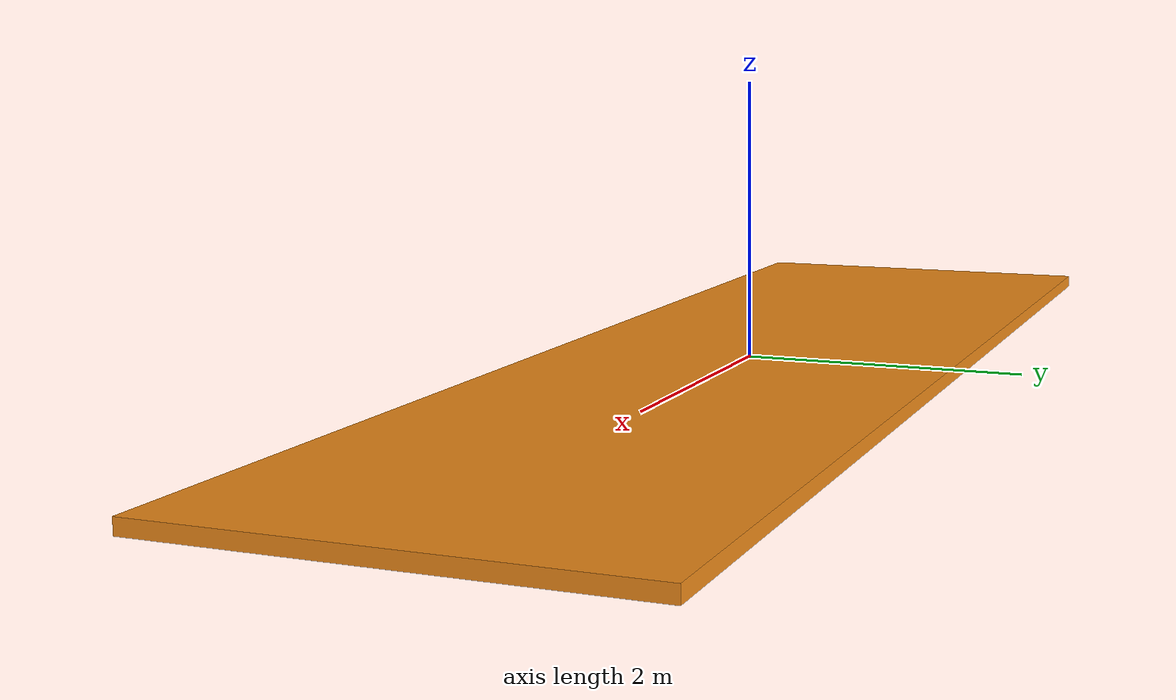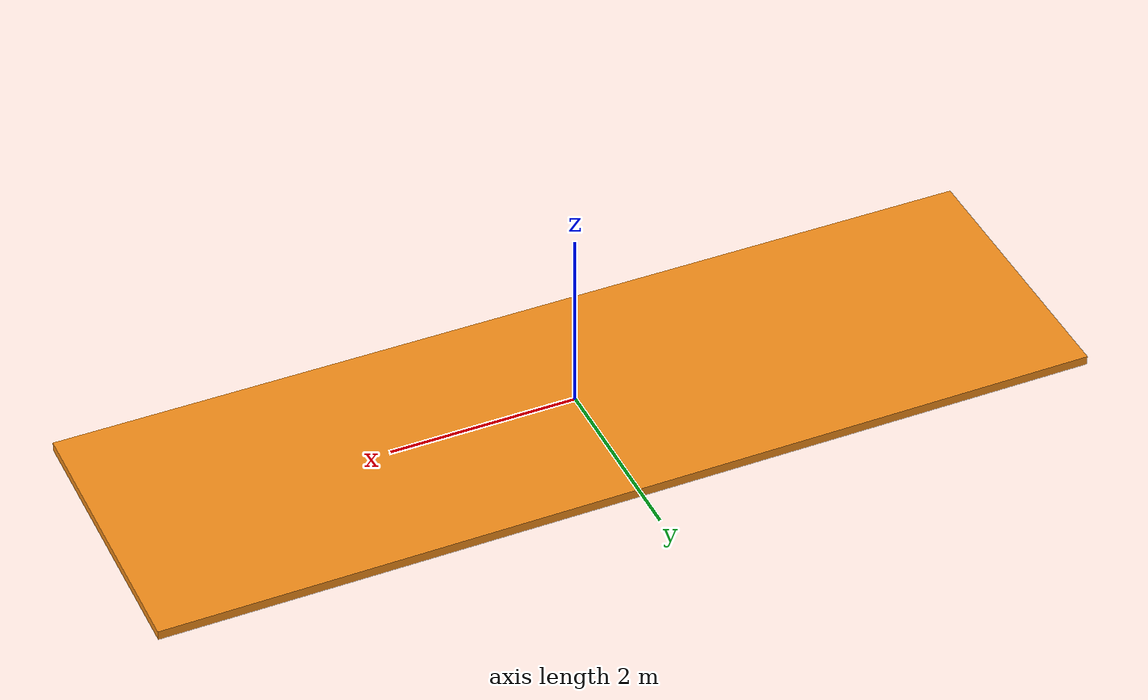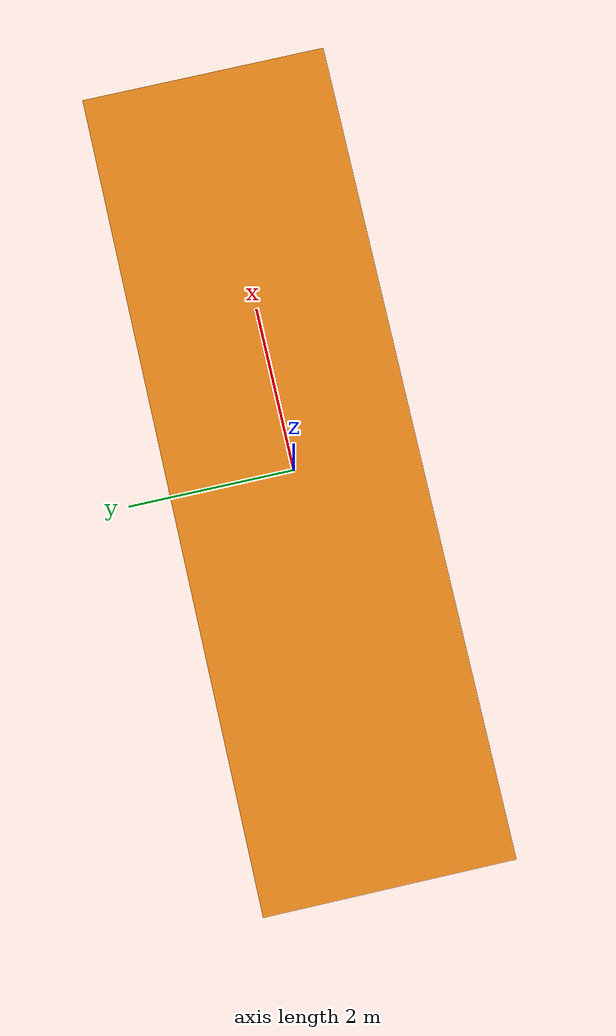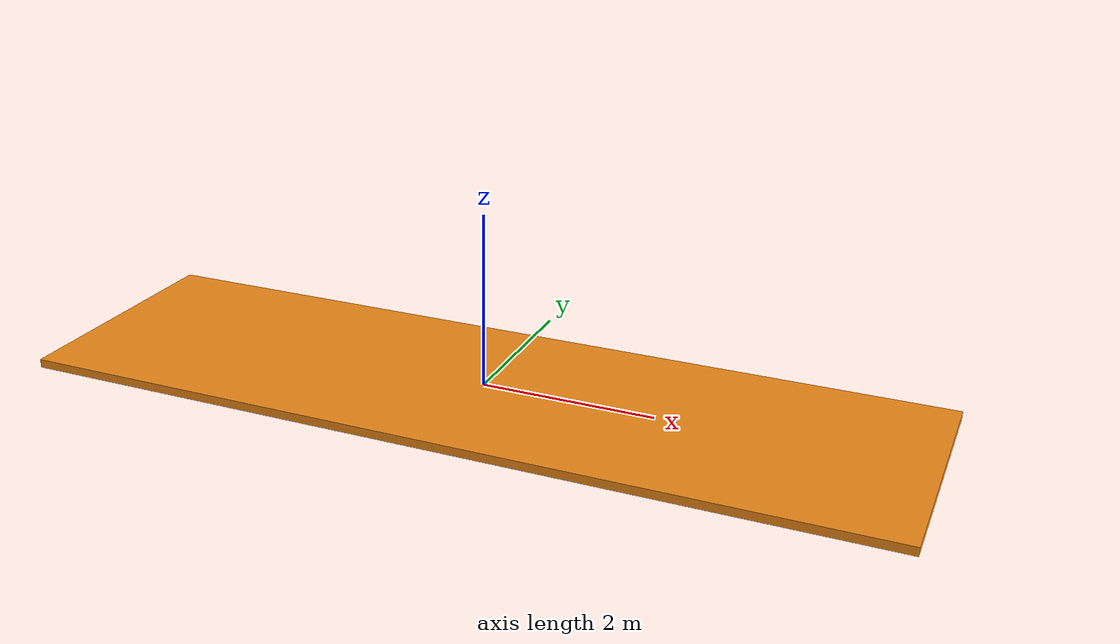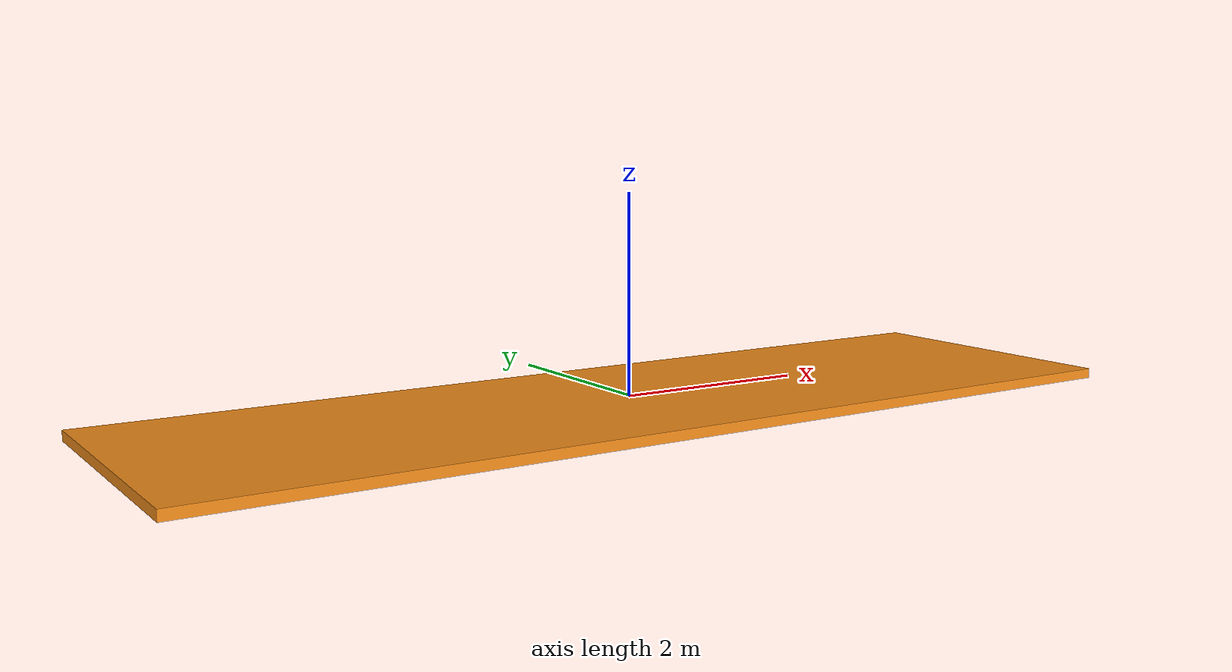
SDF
<?xml version='1.0'?>
<sdf version='1.5'>
  <model name='stepping_stone_long'>
    <pose frame=''>0 0 -0.05 0 0 0</pose>
    <link name='Stairs_2'>
      <visual name='Stairs_2_Visual_0'>
        <pose frame=''>0 0 0 0 0 0</pose>
        <geometry>
          <box>
            <size>10 3 .1</size>
          </box>
        </geometry>
        <material>
          <script>
            <uri>file://media/materials/scripts/gazebo.material</uri>
            <name>Gazebo/Orange</name>
          </script>
          <ambient>1 1 1 1</ambient>
        </material>
        <meta>
          <layer>0</layer>
        </meta>
      </visual>
      <collision name='Stairs_2_Collision_0'>
        <geometry>
          <polyline>
            <point>-5 -1.5</point>
            <point>-5 1.5</point>
            <point>5 1.5</point>
            <point>5 -1.5</point>
            <height>0</height>
          </polyline>
        </geometry>
        <pose frame=''>0 0 0.05 0 0 0</pose>
        <surface>
          <contact>
            <collide_bitmask> 0xffff </collide_bitmask>
          </contact>
          <friction>
            <torsional>
              <use_patch_radius> true </use_patch_radius>
              <patch_radius> 0.03 </patch_radius>
              <coefficient> 5 </coefficient>
            </torsional>
            <ode>
              <mu> 100 </mu>
              <mu2> 50 </mu2>
            </ode>
          </friction>
        </surface>
      </collision>
    </link>
    <static>1</static>
  </model>
</sdf>
